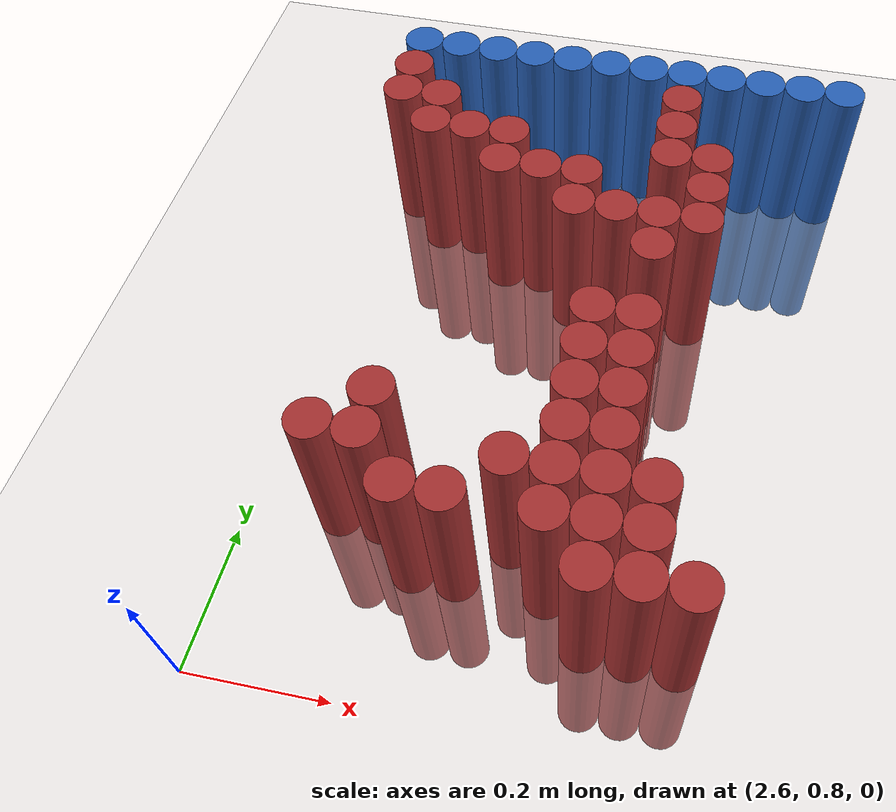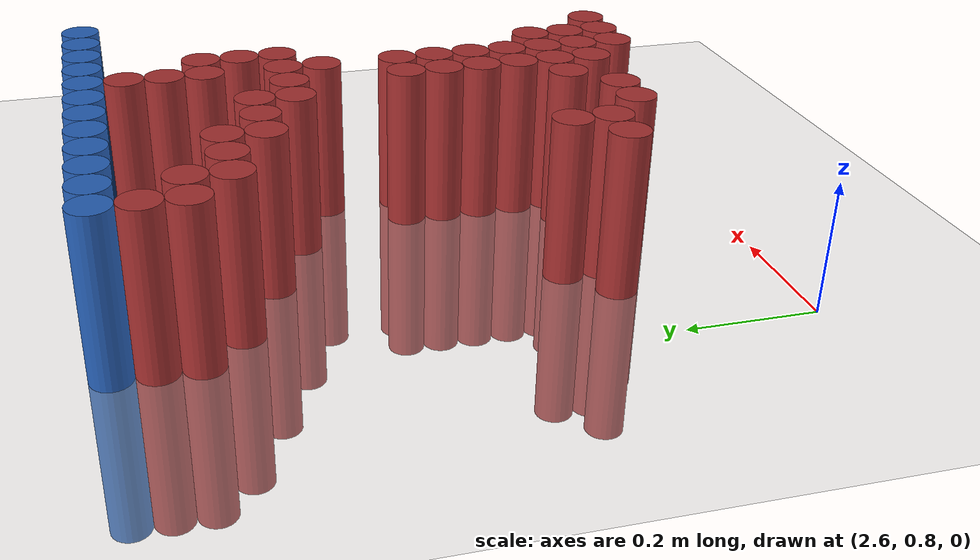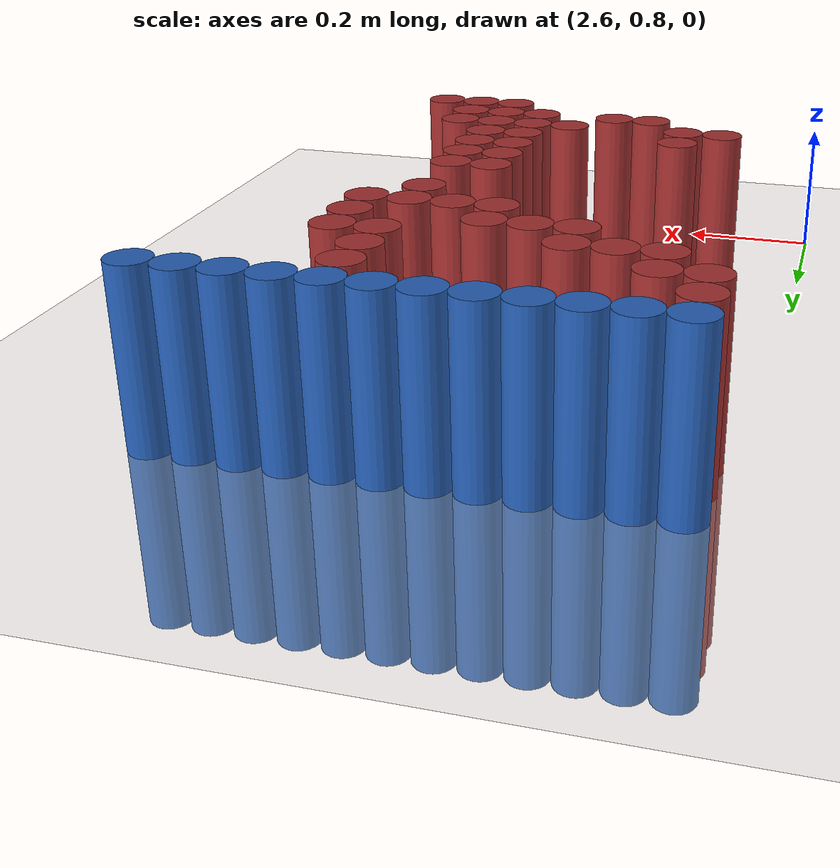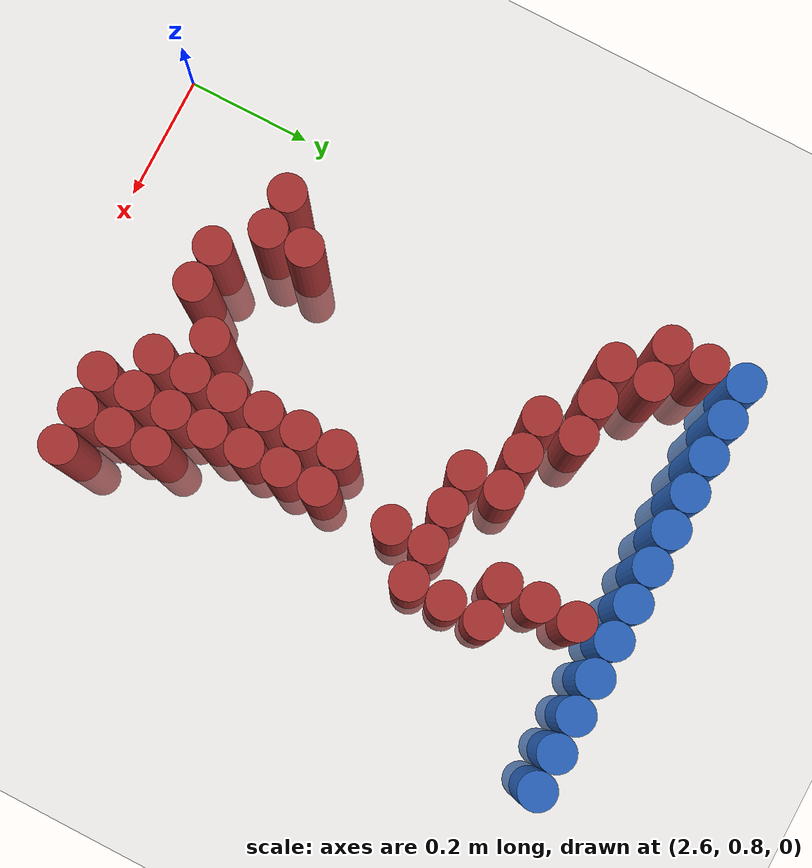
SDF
<sdf version="1.6">
 <world name="default">
  <model name="ground_plane">
   <static>1</static>
   <link name="link">
    <collision name="collision">
     <geometry><plane><normal>0 0 1</normal><size>100 100</size></plane></geometry>
     <surface><friction><ode><mu>100</mu><mu2>50</mu2></ode></friction></surface>
    </collision>
    <visual name="visual">
     <cast_shadows>0</cast_shadows>
     <geometry><plane><normal>0 0 1</normal><size>100 100</size></plane></geometry>
     <material>
      <script><uri>file://media/materials/scripts/gazebo.material</uri><name>Gazebo/Grey</name></script>
     </material>
    </visual>
   </link>
  </model>
  <model name="unit_cylinder_105">
   <static>1</static>
   <pose>2.670000 1.770000 0.000000 0.000000 0.000000 0.000000</pose>
   <link name="link">
    <inertial>
     <mass>1</mass>
     <inertia><ixx>0.145833</ixx><ixy>0</ixy><ixz>0</ixz><iyy>0.145833</iyy><iyz>0</iyz><izz>0.125</izz></inertia>
    </inertial>
    <collision name="collision">
     <geometry><cylinder><radius>0.030000</radius><length>0.5</length></cylinder></geometry>
    </collision>
    <visual name="visual">
     <geometry><cylinder><radius>0.030000</radius><length>0.5</length></cylinder></geometry>
     <material>
      <ambient>0.152000 0.379000 0.720000 1</ambient>
      <diffuse>0.152000 0.379000 0.720000 1</diffuse>
     </material>
     <material>
      <script><name>Gazebo/Grey</name><uri>file://media/materials/scripts/gazebo.material</uri></script>
     </material>
    </visual>
   </link>
  </model>
  <model name="unit_cylinder_106">
   <static>1</static>
   <pose>2.730000 1.770000 0.000000 0.000000 0.000000 0.000000</pose>
   <link name="link">
    <inertial>
     <mass>1</mass>
     <inertia><ixx>0.145833</ixx><ixy>0</ixy><ixz>0</ixz><iyy>0.145833</iyy><iyz>0</iyz><izz>0.125</izz></inertia>
    </inertial>
    <collision name="collision">
     <geometry><cylinder><radius>0.030000</radius><length>0.5</length></cylinder></geometry>
    </collision>
    <visual name="visual">
     <geometry><cylinder><radius>0.030000</radius><length>0.5</length></cylinder></geometry>
     <material>
      <ambient>0.152000 0.379000 0.720000 1</ambient>
      <diffuse>0.152000 0.379000 0.720000 1</diffuse>
     </material>
     <material>
      <script><name>Gazebo/Grey</name><uri>file://media/materials/scripts/gazebo.material</uri></script>
     </material>
    </visual>
   </link>
  </model>
  <model name="unit_cylinder_107">
   <static>1</static>
   <pose>2.790000 1.770000 0.000000 0.000000 0.000000 0.000000</pose>
   <link name="link">
    <inertial>
     <mass>1</mass>
     <inertia><ixx>0.145833</ixx><ixy>0</ixy><ixz>0</ixz><iyy>0.145833</iyy><iyz>0</iyz><izz>0.125</izz></inertia>
    </inertial>
    <collision name="collision">
     <geometry><cylinder><radius>0.030000</radius><length>0.5</length></cylinder></geometry>
    </collision>
    <visual name="visual">
     <geometry><cylinder><radius>0.030000</radius><length>0.5</length></cylinder></geometry>
     <material>
      <ambient>0.152000 0.379000 0.720000 1</ambient>
      <diffuse>0.152000 0.379000 0.720000 1</diffuse>
     </material>
     <material>
      <script><name>Gazebo/Grey</name><uri>file://media/materials/scripts/gazebo.material</uri></script>
     </material>
    </visual>
   </link>
  </model>
  <model name="unit_cylinder_108">
   <static>1</static>
   <pose>2.850000 1.770000 0.000000 0.000000 0.000000 0.000000</pose>
   <link name="link">
    <inertial>
     <mass>1</mass>
     <inertia><ixx>0.145833</ixx><ixy>0</ixy><ixz>0</ixz><iyy>0.145833</iyy><iyz>0</iyz><izz>0.125</izz></inertia>
    </inertial>
    <collision name="collision">
     <geometry><cylinder><radius>0.030000</radius><length>0.5</length></cylinder></geometry>
    </collision>
    <visual name="visual">
     <geometry><cylinder><radius>0.030000</radius><length>0.5</length></cylinder></geometry>
     <material>
      <ambient>0.152000 0.379000 0.720000 1</ambient>
      <diffuse>0.152000 0.379000 0.720000 1</diffuse>
     </material>
     <material>
      <script><name>Gazebo/Grey</name><uri>file://media/materials/scripts/gazebo.material</uri></script>
     </material>
    </visual>
   </link>
  </model>
  <model name="unit_cylinder_109">
   <static>1</static>
   <pose>2.910000 1.770000 0.000000 0.000000 0.000000 0.000000</pose>
   <link name="link">
    <inertial>
     <mass>1</mass>
     <inertia><ixx>0.145833</ixx><ixy>0</ixy><ixz>0</ixz><iyy>0.145833</iyy><iyz>0</iyz><izz>0.125</izz></inertia>
    </inertial>
    <collision name="collision">
     <geometry><cylinder><radius>0.030000</radius><length>0.5</length></cylinder></geometry>
    </collision>
    <visual name="visual">
     <geometry><cylinder><radius>0.030000</radius><length>0.5</length></cylinder></geometry>
     <material>
      <ambient>0.152000 0.379000 0.720000 1</ambient>
      <diffuse>0.152000 0.379000 0.720000 1</diffuse>
     </material>
     <material>
      <script><name>Gazebo/Grey</name><uri>file://media/materials/scripts/gazebo.material</uri></script>
     </material>
    </visual>
   </link>
  </model>
  <model name="unit_cylinder_110">
   <static>1</static>
   <pose>2.970000 1.770000 0.000000 0.000000 0.000000 0.000000</pose>
   <link name="link">
    <inertial>
     <mass>1</mass>
     <inertia><ixx>0.145833</ixx><ixy>0</ixy><ixz>0</ixz><iyy>0.145833</iyy><iyz>0</iyz><izz>0.125</izz></inertia>
    </inertial>
    <collision name="collision">
     <geometry><cylinder><radius>0.030000</radius><length>0.5</length></cylinder></geometry>
    </collision>
    <visual name="visual">
     <geometry><cylinder><radius>0.030000</radius><length>0.5</length></cylinder></geometry>
     <material>
      <ambient>0.152000 0.379000 0.720000 1</ambient>
      <diffuse>0.152000 0.379000 0.720000 1</diffuse>
     </material>
     <material>
      <script><name>Gazebo/Grey</name><uri>file://media/materials/scripts/gazebo.material</uri></script>
     </material>
    </visual>
   </link>
  </model>
  <model name="unit_cylinder_111">
   <static>1</static>
   <pose>3.030000 1.770000 0.000000 0.000000 0.000000 0.000000</pose>
   <link name="link">
    <inertial>
     <mass>1</mass>
     <inertia><ixx>0.145833</ixx><ixy>0</ixy><ixz>0</ixz><iyy>0.145833</iyy><iyz>0</iyz><izz>0.125</izz></inertia>
    </inertial>
    <collision name="collision">
     <geometry><cylinder><radius>0.030000</radius><length>0.5</length></cylinder></geometry>
    </collision>
    <visual name="visual">
     <geometry><cylinder><radius>0.030000</radius><length>0.5</length></cylinder></geometry>
     <material>
      <ambient>0.152000 0.379000 0.720000 1</ambient>
      <diffuse>0.152000 0.379000 0.720000 1</diffuse>
     </material>
     <material>
      <script><name>Gazebo/Grey</name><uri>file://media/materials/scripts/gazebo.material</uri></script>
     </material>
    </visual>
   </link>
  </model>
  <model name="unit_cylinder_112">
   <static>1</static>
   <pose>3.090000 1.770000 0.000000 0.000000 0.000000 0.000000</pose>
   <link name="link">
    <inertial>
     <mass>1</mass>
     <inertia><ixx>0.145833</ixx><ixy>0</ixy><ixz>0</ixz><iyy>0.145833</iyy><iyz>0</iyz><izz>0.125</izz></inertia>
    </inertial>
    <collision name="collision">
     <geometry><cylinder><radius>0.030000</radius><length>0.5</length></cylinder></geometry>
    </collision>
    <visual name="visual">
     <geometry><cylinder><radius>0.030000</radius><length>0.5</length></cylinder></geometry>
     <material>
      <ambient>0.152000 0.379000 0.720000 1</ambient>
      <diffuse>0.152000 0.379000 0.720000 1</diffuse>
     </material>
     <material>
      <script><name>Gazebo/Grey</name><uri>file://media/materials/scripts/gazebo.material</uri></script>
     </material>
    </visual>
   </link>
  </model>
  <model name="unit_cylinder_113">
   <static>1</static>
   <pose>3.150000 1.770000 0.000000 0.000000 0.000000 0.000000</pose>
   <link name="link">
    <inertial>
     <mass>1</mass>
     <inertia><ixx>0.145833</ixx><ixy>0</ixy><ixz>0</ixz><iyy>0.145833</iyy><iyz>0</iyz><izz>0.125</izz></inertia>
    </inertial>
    <collision name="collision">
     <geometry><cylinder><radius>0.030000</radius><length>0.5</length></cylinder></geometry>
    </collision>
    <visual name="visual">
     <geometry><cylinder><radius>0.030000</radius><length>0.5</length></cylinder></geometry>
     <material>
      <ambient>0.152000 0.379000 0.720000 1</ambient>
      <diffuse>0.152000 0.379000 0.720000 1</diffuse>
     </material>
     <material>
      <script><name>Gazebo/Grey</name><uri>file://media/materials/scripts/gazebo.material</uri></script>
     </material>
    </visual>
   </link>
  </model>
  <model name="unit_cylinder_114">
   <static>1</static>
   <pose>3.210000 1.770000 0.000000 0.000000 0.000000 0.000000</pose>
   <link name="link">
    <inertial>
     <mass>1</mass>
     <inertia><ixx>0.145833</ixx><ixy>0</ixy><ixz>0</ixz><iyy>0.145833</iyy><iyz>0</iyz><izz>0.125</izz></inertia>
    </inertial>
    <collision name="collision">
     <geometry><cylinder><radius>0.030000</radius><length>0.5</length></cylinder></geometry>
    </collision>
    <visual name="visual">
     <geometry><cylinder><radius>0.030000</radius><length>0.5</length></cylinder></geometry>
     <material>
      <ambient>0.152000 0.379000 0.720000 1</ambient>
      <diffuse>0.152000 0.379000 0.720000 1</diffuse>
     </material>
     <material>
      <script><name>Gazebo/Grey</name><uri>file://media/materials/scripts/gazebo.material</uri></script>
     </material>
    </visual>
   </link>
  </model>
  <model name="unit_cylinder_115">
   <static>1</static>
   <pose>3.270000 1.770000 0.000000 0.000000 0.000000 0.000000</pose>
   <link name="link">
    <inertial>
     <mass>1</mass>
     <inertia><ixx>0.145833</ixx><ixy>0</ixy><ixz>0</ixz><iyy>0.145833</iyy><iyz>0</iyz><izz>0.125</izz></inertia>
    </inertial>
    <collision name="collision">
     <geometry><cylinder><radius>0.030000</radius><length>0.5</length></cylinder></geometry>
    </collision>
    <visual name="visual">
     <geometry><cylinder><radius>0.030000</radius><length>0.5</length></cylinder></geometry>
     <material>
      <ambient>0.152000 0.379000 0.720000 1</ambient>
      <diffuse>0.152000 0.379000 0.720000 1</diffuse>
     </material>
     <material>
      <script><name>Gazebo/Grey</name><uri>file://media/materials/scripts/gazebo.material</uri></script>
     </material>
    </visual>
   </link>
  </model>
  <model name="unit_cylinder_116">
   <static>1</static>
   <pose>3.330000 1.770000 0.000000 0.000000 0.000000 0.000000</pose>
   <link name="link">
    <inertial>
     <mass>1</mass>
     <inertia><ixx>0.145833</ixx><ixy>0</ixy><ixz>0</ixz><iyy>0.145833</iyy><iyz>0</iyz><izz>0.125</izz></inertia>
    </inertial>
    <collision name="collision">
     <geometry><cylinder><radius>0.030000</radius><length>0.5</length></cylinder></geometry>
    </collision>
    <visual name="visual">
     <geometry><cylinder><radius>0.030000</radius><length>0.5</length></cylinder></geometry>
     <material>
      <ambient>0.152000 0.379000 0.720000 1</ambient>
      <diffuse>0.152000 0.379000 0.720000 1</diffuse>
     </material>
     <material>
      <script><name>Gazebo/Grey</name><uri>file://media/materials/scripts/gazebo.material</uri></script>
     </material>
    </visual>
   </link>
  </model>
  <model name="unit_cylinder_129">
   <static>1</static>
   <pose>2.670000 1.710000 0.000000 0.000000 0.000000 0.000000</pose>
   <link name="link">
    <inertial>
     <mass>1</mass>
     <inertia><ixx>0.145833</ixx><ixy>0</ixy><ixz>0</ixz><iyy>0.145833</iyy><iyz>0</iyz><izz>0.125</izz></inertia>
    </inertial>
    <collision name="collision">
     <geometry><cylinder><radius>0.030000</radius><length>0.5</length></cylinder></geometry>
    </collision>
    <visual name="visual">
     <geometry><cylinder><radius>0.030000</radius><length>0.5</length></cylinder></geometry>
     <material>
      <ambient>0.648000 0.192000 0.192000 1</ambient>
      <diffuse>0.648000 0.192000 0.192000 1</diffuse>
     </material>
     <material>
      <script><name>Gazebo/Grey</name><uri>file://media/materials/scripts/gazebo.material</uri></script>
     </material>
    </visual>
   </link>
  </model>
  <model name="unit_cylinder_130">
   <static>1</static>
   <pose>3.090000 1.710000 0.000000 0.000000 0.000000 0.000000</pose>
   <link name="link">
    <inertial>
     <mass>1</mass>
     <inertia><ixx>0.145833</ixx><ixy>0</ixy><ixz>0</ixz><iyy>0.145833</iyy><iyz>0</iyz><izz>0.125</izz></inertia>
    </inertial>
    <collision name="collision">
     <geometry><cylinder><radius>0.030000</radius><length>0.5</length></cylinder></geometry>
    </collision>
    <visual name="visual">
     <geometry><cylinder><radius>0.030000</radius><length>0.5</length></cylinder></geometry>
     <material>
      <ambient>0.648000 0.192000 0.192000 1</ambient>
      <diffuse>0.648000 0.192000 0.192000 1</diffuse>
     </material>
     <material>
      <script><name>Gazebo/Grey</name><uri>file://media/materials/scripts/gazebo.material</uri></script>
     </material>
    </visual>
   </link>
  </model>
  <model name="unit_cylinder_136">
   <static>1</static>
   <pose>2.670000 1.650000 0.000000 0.000000 0.000000 0.000000</pose>
   <link name="link">
    <inertial>
     <mass>1</mass>
     <inertia><ixx>0.145833</ixx><ixy>0</ixy><ixz>0</ixz><iyy>0.145833</iyy><iyz>0</iyz><izz>0.125</izz></inertia>
    </inertial>
    <collision name="collision">
     <geometry><cylinder><radius>0.030000</radius><length>0.5</length></cylinder></geometry>
    </collision>
    <visual name="visual">
     <geometry><cylinder><radius>0.030000</radius><length>0.5</length></cylinder></geometry>
     <material>
      <ambient>0.648000 0.192000 0.192000 1</ambient>
      <diffuse>0.648000 0.192000 0.192000 1</diffuse>
     </material>
     <material>
      <script><name>Gazebo/Grey</name><uri>file://media/materials/scripts/gazebo.material</uri></script>
     </material>
    </visual>
   </link>
  </model>
  <model name="unit_cylinder_137">
   <static>1</static>
   <pose>2.730000 1.650000 0.000000 0.000000 0.000000 0.000000</pose>
   <link name="link">
    <inertial>
     <mass>1</mass>
     <inertia><ixx>0.145833</ixx><ixy>0</ixy><ixz>0</ixz><iyy>0.145833</iyy><iyz>0</iyz><izz>0.125</izz></inertia>
    </inertial>
    <collision name="collision">
     <geometry><cylinder><radius>0.030000</radius><length>0.5</length></cylinder></geometry>
    </collision>
    <visual name="visual">
     <geometry><cylinder><radius>0.030000</radius><length>0.5</length></cylinder></geometry>
     <material>
      <ambient>0.648000 0.192000 0.192000 1</ambient>
      <diffuse>0.648000 0.192000 0.192000 1</diffuse>
     </material>
     <material>
      <script><name>Gazebo/Grey</name><uri>file://media/materials/scripts/gazebo.material</uri></script>
     </material>
    </visual>
   </link>
  </model>
  <model name="unit_cylinder_138">
   <static>1</static>
   <pose>3.090000 1.650000 0.000000 0.000000 0.000000 0.000000</pose>
   <link name="link">
    <inertial>
     <mass>1</mass>
     <inertia><ixx>0.145833</ixx><ixy>0</ixy><ixz>0</ixz><iyy>0.145833</iyy><iyz>0</iyz><izz>0.125</izz></inertia>
    </inertial>
    <collision name="collision">
     <geometry><cylinder><radius>0.030000</radius><length>0.5</length></cylinder></geometry>
    </collision>
    <visual name="visual">
     <geometry><cylinder><radius>0.030000</radius><length>0.5</length></cylinder></geometry>
     <material>
      <ambient>0.648000 0.192000 0.192000 1</ambient>
      <diffuse>0.648000 0.192000 0.192000 1</diffuse>
     </material>
     <material>
      <script><name>Gazebo/Grey</name><uri>file://media/materials/scripts/gazebo.material</uri></script>
     </material>
    </visual>
   </link>
  </model>
  <model name="unit_cylinder_146">
   <static>1</static>
   <pose>2.730000 1.590000 0.000000 0.000000 0.000000 0.000000</pose>
   <link name="link">
    <inertial>
     <mass>1</mass>
     <inertia><ixx>0.145833</ixx><ixy>0</ixy><ixz>0</ixz><iyy>0.145833</iyy><iyz>0</iyz><izz>0.125</izz></inertia>
    </inertial>
    <collision name="collision">
     <geometry><cylinder><radius>0.030000</radius><length>0.5</length></cylinder></geometry>
    </collision>
    <visual name="visual">
     <geometry><cylinder><radius>0.030000</radius><length>0.5</length></cylinder></geometry>
     <material>
      <ambient>0.648000 0.192000 0.192000 1</ambient>
      <diffuse>0.648000 0.192000 0.192000 1</diffuse>
     </material>
     <material>
      <script><name>Gazebo/Grey</name><uri>file://media/materials/scripts/gazebo.material</uri></script>
     </material>
    </visual>
   </link>
  </model>
  <model name="unit_cylinder_147">
   <static>1</static>
   <pose>2.790000 1.590000 0.000000 0.000000 0.000000 0.000000</pose>
   <link name="link">
    <inertial>
     <mass>1</mass>
     <inertia><ixx>0.145833</ixx><ixy>0</ixy><ixz>0</ixz><iyy>0.145833</iyy><iyz>0</iyz><izz>0.125</izz></inertia>
    </inertial>
    <collision name="collision">
     <geometry><cylinder><radius>0.030000</radius><length>0.5</length></cylinder></geometry>
    </collision>
    <visual name="visual">
     <geometry><cylinder><radius>0.030000</radius><length>0.5</length></cylinder></geometry>
     <material>
      <ambient>0.648000 0.192000 0.192000 1</ambient>
      <diffuse>0.648000 0.192000 0.192000 1</diffuse>
     </material>
     <material>
      <script><name>Gazebo/Grey</name><uri>file://media/materials/scripts/gazebo.material</uri></script>
     </material>
    </visual>
   </link>
  </model>
  <model name="unit_cylinder_148">
   <static>1</static>
   <pose>2.850000 1.590000 0.000000 0.000000 0.000000 0.000000</pose>
   <link name="link">
    <inertial>
     <mass>1</mass>
     <inertia><ixx>0.145833</ixx><ixy>0</ixy><ixz>0</ixz><iyy>0.145833</iyy><iyz>0</iyz><izz>0.125</izz></inertia>
    </inertial>
    <collision name="collision">
     <geometry><cylinder><radius>0.030000</radius><length>0.5</length></cylinder></geometry>
    </collision>
    <visual name="visual">
     <geometry><cylinder><radius>0.030000</radius><length>0.5</length></cylinder></geometry>
     <material>
      <ambient>0.648000 0.192000 0.192000 1</ambient>
      <diffuse>0.648000 0.192000 0.192000 1</diffuse>
     </material>
     <material>
      <script><name>Gazebo/Grey</name><uri>file://media/materials/scripts/gazebo.material</uri></script>
     </material>
    </visual>
   </link>
  </model>
  <model name="unit_cylinder_149">
   <static>1</static>
   <pose>3.090000 1.590000 0.000000 0.000000 0.000000 0.000000</pose>
   <link name="link">
    <inertial>
     <mass>1</mass>
     <inertia><ixx>0.145833</ixx><ixy>0</ixy><ixz>0</ixz><iyy>0.145833</iyy><iyz>0</iyz><izz>0.125</izz></inertia>
    </inertial>
    <collision name="collision">
     <geometry><cylinder><radius>0.030000</radius><length>0.5</length></cylinder></geometry>
    </collision>
    <visual name="visual">
     <geometry><cylinder><radius>0.030000</radius><length>0.5</length></cylinder></geometry>
     <material>
      <ambient>0.648000 0.192000 0.192000 1</ambient>
      <diffuse>0.648000 0.192000 0.192000 1</diffuse>
     </material>
     <material>
      <script><name>Gazebo/Grey</name><uri>file://media/materials/scripts/gazebo.material</uri></script>
     </material>
    </visual>
   </link>
  </model>
  <model name="unit_cylinder_150">
   <static>1</static>
   <pose>3.150000 1.590000 0.000000 0.000000 0.000000 0.000000</pose>
   <link name="link">
    <inertial>
     <mass>1</mass>
     <inertia><ixx>0.145833</ixx><ixy>0</ixy><ixz>0</ixz><iyy>0.145833</iyy><iyz>0</iyz><izz>0.125</izz></inertia>
    </inertial>
    <collision name="collision">
     <geometry><cylinder><radius>0.030000</radius><length>0.5</length></cylinder></geometry>
    </collision>
    <visual name="visual">
     <geometry><cylinder><radius>0.030000</radius><length>0.5</length></cylinder></geometry>
     <material>
      <ambient>0.648000 0.192000 0.192000 1</ambient>
      <diffuse>0.648000 0.192000 0.192000 1</diffuse>
     </material>
     <material>
      <script><name>Gazebo/Grey</name><uri>file://media/materials/scripts/gazebo.material</uri></script>
     </material>
    </visual>
   </link>
  </model>
  <model name="unit_cylinder_160">
   <static>1</static>
   <pose>2.850000 1.530000 0.000000 0.000000 0.000000 0.000000</pose>
   <link name="link">
    <inertial>
     <mass>1</mass>
     <inertia><ixx>0.145833</ixx><ixy>0</ixy><ixz>0</ixz><iyy>0.145833</iyy><iyz>0</iyz><izz>0.125</izz></inertia>
    </inertial>
    <collision name="collision">
     <geometry><cylinder><radius>0.030000</radius><length>0.5</length></cylinder></geometry>
    </collision>
    <visual name="visual">
     <geometry><cylinder><radius>0.030000</radius><length>0.5</length></cylinder></geometry>
     <material>
      <ambient>0.648000 0.192000 0.192000 1</ambient>
      <diffuse>0.648000 0.192000 0.192000 1</diffuse>
     </material>
     <material>
      <script><name>Gazebo/Grey</name><uri>file://media/materials/scripts/gazebo.material</uri></script>
     </material>
    </visual>
   </link>
  </model>
  <model name="unit_cylinder_161">
   <static>1</static>
   <pose>2.910000 1.530000 0.000000 0.000000 0.000000 0.000000</pose>
   <link name="link">
    <inertial>
     <mass>1</mass>
     <inertia><ixx>0.145833</ixx><ixy>0</ixy><ixz>0</ixz><iyy>0.145833</iyy><iyz>0</iyz><izz>0.125</izz></inertia>
    </inertial>
    <collision name="collision">
     <geometry><cylinder><radius>0.030000</radius><length>0.5</length></cylinder></geometry>
    </collision>
    <visual name="visual">
     <geometry><cylinder><radius>0.030000</radius><length>0.5</length></cylinder></geometry>
     <material>
      <ambient>0.648000 0.192000 0.192000 1</ambient>
      <diffuse>0.648000 0.192000 0.192000 1</diffuse>
     </material>
     <material>
      <script><name>Gazebo/Grey</name><uri>file://media/materials/scripts/gazebo.material</uri></script>
     </material>
    </visual>
   </link>
  </model>
  <model name="unit_cylinder_162">
   <static>1</static>
   <pose>2.970000 1.530000 0.000000 0.000000 0.000000 0.000000</pose>
   <link name="link">
    <inertial>
     <mass>1</mass>
     <inertia><ixx>0.145833</ixx><ixy>0</ixy><ixz>0</ixz><iyy>0.145833</iyy><iyz>0</iyz><izz>0.125</izz></inertia>
    </inertial>
    <collision name="collision">
     <geometry><cylinder><radius>0.030000</radius><length>0.5</length></cylinder></geometry>
    </collision>
    <visual name="visual">
     <geometry><cylinder><radius>0.030000</radius><length>0.5</length></cylinder></geometry>
     <material>
      <ambient>0.648000 0.192000 0.192000 1</ambient>
      <diffuse>0.648000 0.192000 0.192000 1</diffuse>
     </material>
     <material>
      <script><name>Gazebo/Grey</name><uri>file://media/materials/scripts/gazebo.material</uri></script>
     </material>
    </visual>
   </link>
  </model>
  <model name="unit_cylinder_163">
   <static>1</static>
   <pose>3.150000 1.530000 0.000000 0.000000 0.000000 0.000000</pose>
   <link name="link">
    <inertial>
     <mass>1</mass>
     <inertia><ixx>0.145833</ixx><ixy>0</ixy><ixz>0</ixz><iyy>0.145833</iyy><iyz>0</iyz><izz>0.125</izz></inertia>
    </inertial>
    <collision name="collision">
     <geometry><cylinder><radius>0.030000</radius><length>0.5</length></cylinder></geometry>
    </collision>
    <visual name="visual">
     <geometry><cylinder><radius>0.030000</radius><length>0.5</length></cylinder></geometry>
     <material>
      <ambient>0.648000 0.192000 0.192000 1</ambient>
      <diffuse>0.648000 0.192000 0.192000 1</diffuse>
     </material>
     <material>
      <script><name>Gazebo/Grey</name><uri>file://media/materials/scripts/gazebo.material</uri></script>
     </material>
    </visual>
   </link>
  </model>
  <model name="unit_cylinder_170">
   <static>1</static>
   <pose>2.970000 1.470000 0.000000 0.000000 0.000000 0.000000</pose>
   <link name="link">
    <inertial>
     <mass>1</mass>
     <inertia><ixx>0.145833</ixx><ixy>0</ixy><ixz>0</ixz><iyy>0.145833</iyy><iyz>0</iyz><izz>0.125</izz></inertia>
    </inertial>
    <collision name="collision">
     <geometry><cylinder><radius>0.030000</radius><length>0.5</length></cylinder></geometry>
    </collision>
    <visual name="visual">
     <geometry><cylinder><radius>0.030000</radius><length>0.5</length></cylinder></geometry>
     <material>
      <ambient>0.648000 0.192000 0.192000 1</ambient>
      <diffuse>0.648000 0.192000 0.192000 1</diffuse>
     </material>
     <material>
      <script><name>Gazebo/Grey</name><uri>file://media/materials/scripts/gazebo.material</uri></script>
     </material>
    </visual>
   </link>
  </model>
  <model name="unit_cylinder_171">
   <static>1</static>
   <pose>3.030000 1.470000 0.000000 0.000000 0.000000 0.000000</pose>
   <link name="link">
    <inertial>
     <mass>1</mass>
     <inertia><ixx>0.145833</ixx><ixy>0</ixy><ixz>0</ixz><iyy>0.145833</iyy><iyz>0</iyz><izz>0.125</izz></inertia>
    </inertial>
    <collision name="collision">
     <geometry><cylinder><radius>0.030000</radius><length>0.5</length></cylinder></geometry>
    </collision>
    <visual name="visual">
     <geometry><cylinder><radius>0.030000</radius><length>0.5</length></cylinder></geometry>
     <material>
      <ambient>0.648000 0.192000 0.192000 1</ambient>
      <diffuse>0.648000 0.192000 0.192000 1</diffuse>
     </material>
     <material>
      <script><name>Gazebo/Grey</name><uri>file://media/materials/scripts/gazebo.material</uri></script>
     </material>
    </visual>
   </link>
  </model>
  <model name="unit_cylinder_172">
   <static>1</static>
   <pose>3.090000 1.470000 0.000000 0.000000 0.000000 0.000000</pose>
   <link name="link">
    <inertial>
     <mass>1</mass>
     <inertia><ixx>0.145833</ixx><ixy>0</ixy><ixz>0</ixz><iyy>0.145833</iyy><iyz>0</iyz><izz>0.125</izz></inertia>
    </inertial>
    <collision name="collision">
     <geometry><cylinder><radius>0.030000</radius><length>0.5</length></cylinder></geometry>
    </collision>
    <visual name="visual">
     <geometry><cylinder><radius>0.030000</radius><length>0.5</length></cylinder></geometry>
     <material>
      <ambient>0.648000 0.192000 0.192000 1</ambient>
      <diffuse>0.648000 0.192000 0.192000 1</diffuse>
     </material>
     <material>
      <script><name>Gazebo/Grey</name><uri>file://media/materials/scripts/gazebo.material</uri></script>
     </material>
    </visual>
   </link>
  </model>
  <model name="unit_cylinder_173">
   <static>1</static>
   <pose>3.150000 1.470000 0.000000 0.000000 0.000000 0.000000</pose>
   <link name="link">
    <inertial>
     <mass>1</mass>
     <inertia><ixx>0.145833</ixx><ixy>0</ixy><ixz>0</ixz><iyy>0.145833</iyy><iyz>0</iyz><izz>0.125</izz></inertia>
    </inertial>
    <collision name="collision">
     <geometry><cylinder><radius>0.030000</radius><length>0.5</length></cylinder></geometry>
    </collision>
    <visual name="visual">
     <geometry><cylinder><radius>0.030000</radius><length>0.5</length></cylinder></geometry>
     <material>
      <ambient>0.648000 0.192000 0.192000 1</ambient>
      <diffuse>0.648000 0.192000 0.192000 1</diffuse>
     </material>
     <material>
      <script><name>Gazebo/Grey</name><uri>file://media/materials/scripts/gazebo.material</uri></script>
     </material>
    </visual>
   </link>
  </model>
  <model name="unit_cylinder_179">
   <static>1</static>
   <pose>3.090000 1.410000 0.000000 0.000000 0.000000 0.000000</pose>
   <link name="link">
    <inertial>
     <mass>1</mass>
     <inertia><ixx>0.145833</ixx><ixy>0</ixy><ixz>0</ixz><iyy>0.145833</iyy><iyz>0</iyz><izz>0.125</izz></inertia>
    </inertial>
    <collision name="collision">
     <geometry><cylinder><radius>0.030000</radius><length>0.5</length></cylinder></geometry>
    </collision>
    <visual name="visual">
     <geometry><cylinder><radius>0.030000</radius><length>0.5</length></cylinder></geometry>
     <material>
      <ambient>0.648000 0.192000 0.192000 1</ambient>
      <diffuse>0.648000 0.192000 0.192000 1</diffuse>
     </material>
     <material>
      <script><name>Gazebo/Grey</name><uri>file://media/materials/scripts/gazebo.material</uri></script>
     </material>
    </visual>
   </link>
  </model>
  <model name="unit_cylinder_188">
   <static>1</static>
   <pose>3.030000 1.290000 0.000000 0.000000 0.000000 0.000000</pose>
   <link name="link">
    <inertial>
     <mass>1</mass>
     <inertia><ixx>0.145833</ixx><ixy>0</ixy><ixz>0</ixz><iyy>0.145833</iyy><iyz>0</iyz><izz>0.125</izz></inertia>
    </inertial>
    <collision name="collision">
     <geometry><cylinder><radius>0.030000</radius><length>0.5</length></cylinder></geometry>
    </collision>
    <visual name="visual">
     <geometry><cylinder><radius>0.030000</radius><length>0.5</length></cylinder></geometry>
     <material>
      <ambient>0.648000 0.192000 0.192000 1</ambient>
      <diffuse>0.648000 0.192000 0.192000 1</diffuse>
     </material>
     <material>
      <script><name>Gazebo/Grey</name><uri>file://media/materials/scripts/gazebo.material</uri></script>
     </material>
    </visual>
   </link>
  </model>
  <model name="unit_cylinder_189">
   <static>1</static>
   <pose>3.090000 1.290000 0.000000 0.000000 0.000000 0.000000</pose>
   <link name="link">
    <inertial>
     <mass>1</mass>
     <inertia><ixx>0.145833</ixx><ixy>0</ixy><ixz>0</ixz><iyy>0.145833</iyy><iyz>0</iyz><izz>0.125</izz></inertia>
    </inertial>
    <collision name="collision">
     <geometry><cylinder><radius>0.030000</radius><length>0.5</length></cylinder></geometry>
    </collision>
    <visual name="visual">
     <geometry><cylinder><radius>0.030000</radius><length>0.5</length></cylinder></geometry>
     <material>
      <ambient>0.648000 0.192000 0.192000 1</ambient>
      <diffuse>0.648000 0.192000 0.192000 1</diffuse>
     </material>
     <material>
      <script><name>Gazebo/Grey</name><uri>file://media/materials/scripts/gazebo.material</uri></script>
     </material>
    </visual>
   </link>
  </model>
  <model name="unit_cylinder_193">
   <static>1</static>
   <pose>3.030000 1.230000 0.000000 0.000000 0.000000 0.000000</pose>
   <link name="link">
    <inertial>
     <mass>1</mass>
     <inertia><ixx>0.145833</ixx><ixy>0</ixy><ixz>0</ixz><iyy>0.145833</iyy><iyz>0</iyz><izz>0.125</izz></inertia>
    </inertial>
    <collision name="collision">
     <geometry><cylinder><radius>0.030000</radius><length>0.5</length></cylinder></geometry>
    </collision>
    <visual name="visual">
     <geometry><cylinder><radius>0.030000</radius><length>0.5</length></cylinder></geometry>
     <material>
      <ambient>0.648000 0.192000 0.192000 1</ambient>
      <diffuse>0.648000 0.192000 0.192000 1</diffuse>
     </material>
     <material>
      <script><name>Gazebo/Grey</name><uri>file://media/materials/scripts/gazebo.material</uri></script>
     </material>
    </visual>
   </link>
  </model>
  <model name="unit_cylinder_194">
   <static>1</static>
   <pose>3.090000 1.230000 0.000000 0.000000 0.000000 0.000000</pose>
   <link name="link">
    <inertial>
     <mass>1</mass>
     <inertia><ixx>0.145833</ixx><ixy>0</ixy><ixz>0</ixz><iyy>0.145833</iyy><iyz>0</iyz><izz>0.125</izz></inertia>
    </inertial>
    <collision name="collision">
     <geometry><cylinder><radius>0.030000</radius><length>0.5</length></cylinder></geometry>
    </collision>
    <visual name="visual">
     <geometry><cylinder><radius>0.030000</radius><length>0.5</length></cylinder></geometry>
     <material>
      <ambient>0.648000 0.192000 0.192000 1</ambient>
      <diffuse>0.648000 0.192000 0.192000 1</diffuse>
     </material>
     <material>
      <script><name>Gazebo/Grey</name><uri>file://media/materials/scripts/gazebo.material</uri></script>
     </material>
    </visual>
   </link>
  </model>
  <model name="unit_cylinder_198">
   <static>1</static>
   <pose>3.030000 1.170000 0.000000 0.000000 0.000000 0.000000</pose>
   <link name="link">
    <inertial>
     <mass>1</mass>
     <inertia><ixx>0.145833</ixx><ixy>0</ixy><ixz>0</ixz><iyy>0.145833</iyy><iyz>0</iyz><izz>0.125</izz></inertia>
    </inertial>
    <collision name="collision">
     <geometry><cylinder><radius>0.030000</radius><length>0.5</length></cylinder></geometry>
    </collision>
    <visual name="visual">
     <geometry><cylinder><radius>0.030000</radius><length>0.5</length></cylinder></geometry>
     <material>
      <ambient>0.648000 0.192000 0.192000 1</ambient>
      <diffuse>0.648000 0.192000 0.192000 1</diffuse>
     </material>
     <material>
      <script><name>Gazebo/Grey</name><uri>file://media/materials/scripts/gazebo.material</uri></script>
     </material>
    </visual>
   </link>
  </model>
  <model name="unit_cylinder_199">
   <static>1</static>
   <pose>3.090000 1.170000 0.000000 0.000000 0.000000 0.000000</pose>
   <link name="link">
    <inertial>
     <mass>1</mass>
     <inertia><ixx>0.145833</ixx><ixy>0</ixy><ixz>0</ixz><iyy>0.145833</iyy><iyz>0</iyz><izz>0.125</izz></inertia>
    </inertial>
    <collision name="collision">
     <geometry><cylinder><radius>0.030000</radius><length>0.5</length></cylinder></geometry>
    </collision>
    <visual name="visual">
     <geometry><cylinder><radius>0.030000</radius><length>0.5</length></cylinder></geometry>
     <material>
      <ambient>0.648000 0.192000 0.192000 1</ambient>
      <diffuse>0.648000 0.192000 0.192000 1</diffuse>
     </material>
     <material>
      <script><name>Gazebo/Grey</name><uri>file://media/materials/scripts/gazebo.material</uri></script>
     </material>
    </visual>
   </link>
  </model>
  <model name="unit_cylinder_204">
   <static>1</static>
   <pose>2.790000 1.110000 0.000000 0.000000 0.000000 0.000000</pose>
   <link name="link">
    <inertial>
     <mass>1</mass>
     <inertia><ixx>0.145833</ixx><ixy>0</ixy><ixz>0</ixz><iyy>0.145833</iyy><iyz>0</iyz><izz>0.125</izz></inertia>
    </inertial>
    <collision name="collision">
     <geometry><cylinder><radius>0.030000</radius><length>0.5</length></cylinder></geometry>
    </collision>
    <visual name="visual">
     <geometry><cylinder><radius>0.030000</radius><length>0.5</length></cylinder></geometry>
     <material>
      <ambient>0.648000 0.192000 0.192000 1</ambient>
      <diffuse>0.648000 0.192000 0.192000 1</diffuse>
     </material>
     <material>
      <script><name>Gazebo/Grey</name><uri>file://media/materials/scripts/gazebo.material</uri></script>
     </material>
    </visual>
   </link>
  </model>
  <model name="unit_cylinder_205">
   <static>1</static>
   <pose>3.030000 1.110000 0.000000 0.000000 0.000000 0.000000</pose>
   <link name="link">
    <inertial>
     <mass>1</mass>
     <inertia><ixx>0.145833</ixx><ixy>0</ixy><ixz>0</ixz><iyy>0.145833</iyy><iyz>0</iyz><izz>0.125</izz></inertia>
    </inertial>
    <collision name="collision">
     <geometry><cylinder><radius>0.030000</radius><length>0.5</length></cylinder></geometry>
    </collision>
    <visual name="visual">
     <geometry><cylinder><radius>0.030000</radius><length>0.5</length></cylinder></geometry>
     <material>
      <ambient>0.648000 0.192000 0.192000 1</ambient>
      <diffuse>0.648000 0.192000 0.192000 1</diffuse>
     </material>
     <material>
      <script><name>Gazebo/Grey</name><uri>file://media/materials/scripts/gazebo.material</uri></script>
     </material>
    </visual>
   </link>
  </model>
  <model name="unit_cylinder_206">
   <static>1</static>
   <pose>3.090000 1.110000 0.000000 0.000000 0.000000 0.000000</pose>
   <link name="link">
    <inertial>
     <mass>1</mass>
     <inertia><ixx>0.145833</ixx><ixy>0</ixy><ixz>0</ixz><iyy>0.145833</iyy><iyz>0</iyz><izz>0.125</izz></inertia>
    </inertial>
    <collision name="collision">
     <geometry><cylinder><radius>0.030000</radius><length>0.5</length></cylinder></geometry>
    </collision>
    <visual name="visual">
     <geometry><cylinder><radius>0.030000</radius><length>0.5</length></cylinder></geometry>
     <material>
      <ambient>0.648000 0.192000 0.192000 1</ambient>
      <diffuse>0.648000 0.192000 0.192000 1</diffuse>
     </material>
     <material>
      <script><name>Gazebo/Grey</name><uri>file://media/materials/scripts/gazebo.material</uri></script>
     </material>
    </visual>
   </link>
  </model>
  <model name="unit_cylinder_213">
   <static>1</static>
   <pose>2.730000 1.050000 0.000000 0.000000 0.000000 0.000000</pose>
   <link name="link">
    <inertial>
     <mass>1</mass>
     <inertia><ixx>0.145833</ixx><ixy>0</ixy><ixz>0</ixz><iyy>0.145833</iyy><iyz>0</iyz><izz>0.125</izz></inertia>
    </inertial>
    <collision name="collision">
     <geometry><cylinder><radius>0.030000</radius><length>0.5</length></cylinder></geometry>
    </collision>
    <visual name="visual">
     <geometry><cylinder><radius>0.030000</radius><length>0.5</length></cylinder></geometry>
     <material>
      <ambient>0.648000 0.192000 0.192000 1</ambient>
      <diffuse>0.648000 0.192000 0.192000 1</diffuse>
     </material>
     <material>
      <script><name>Gazebo/Grey</name><uri>file://media/materials/scripts/gazebo.material</uri></script>
     </material>
    </visual>
   </link>
  </model>
  <model name="unit_cylinder_214">
   <static>1</static>
   <pose>2.790000 1.050000 0.000000 0.000000 0.000000 0.000000</pose>
   <link name="link">
    <inertial>
     <mass>1</mass>
     <inertia><ixx>0.145833</ixx><ixy>0</ixy><ixz>0</ixz><iyy>0.145833</iyy><iyz>0</iyz><izz>0.125</izz></inertia>
    </inertial>
    <collision name="collision">
     <geometry><cylinder><radius>0.030000</radius><length>0.5</length></cylinder></geometry>
    </collision>
    <visual name="visual">
     <geometry><cylinder><radius>0.030000</radius><length>0.5</length></cylinder></geometry>
     <material>
      <ambient>0.648000 0.192000 0.192000 1</ambient>
      <diffuse>0.648000 0.192000 0.192000 1</diffuse>
     </material>
     <material>
      <script><name>Gazebo/Grey</name><uri>file://media/materials/scripts/gazebo.material</uri></script>
     </material>
    </visual>
   </link>
  </model>
  <model name="unit_cylinder_215">
   <static>1</static>
   <pose>2.970000 1.050000 0.000000 0.000000 0.000000 0.000000</pose>
   <link name="link">
    <inertial>
     <mass>1</mass>
     <inertia><ixx>0.145833</ixx><ixy>0</ixy><ixz>0</ixz><iyy>0.145833</iyy><iyz>0</iyz><izz>0.125</izz></inertia>
    </inertial>
    <collision name="collision">
     <geometry><cylinder><radius>0.030000</radius><length>0.5</length></cylinder></geometry>
    </collision>
    <visual name="visual">
     <geometry><cylinder><radius>0.030000</radius><length>0.5</length></cylinder></geometry>
     <material>
      <ambient>0.648000 0.192000 0.192000 1</ambient>
      <diffuse>0.648000 0.192000 0.192000 1</diffuse>
     </material>
     <material>
      <script><name>Gazebo/Grey</name><uri>file://media/materials/scripts/gazebo.material</uri></script>
     </material>
    </visual>
   </link>
  </model>
  <model name="unit_cylinder_216">
   <static>1</static>
   <pose>3.030000 1.050000 0.000000 0.000000 0.000000 0.000000</pose>
   <link name="link">
    <inertial>
     <mass>1</mass>
     <inertia><ixx>0.145833</ixx><ixy>0</ixy><ixz>0</ixz><iyy>0.145833</iyy><iyz>0</iyz><izz>0.125</izz></inertia>
    </inertial>
    <collision name="collision">
     <geometry><cylinder><radius>0.030000</radius><length>0.5</length></cylinder></geometry>
    </collision>
    <visual name="visual">
     <geometry><cylinder><radius>0.030000</radius><length>0.5</length></cylinder></geometry>
     <material>
      <ambient>0.648000 0.192000 0.192000 1</ambient>
      <diffuse>0.648000 0.192000 0.192000 1</diffuse>
     </material>
     <material>
      <script><name>Gazebo/Grey</name><uri>file://media/materials/scripts/gazebo.material</uri></script>
     </material>
    </visual>
   </link>
  </model>
  <model name="unit_cylinder_217">
   <static>1</static>
   <pose>3.090000 1.050000 0.000000 0.000000 0.000000 0.000000</pose>
   <link name="link">
    <inertial>
     <mass>1</mass>
     <inertia><ixx>0.145833</ixx><ixy>0</ixy><ixz>0</ixz><iyy>0.145833</iyy><iyz>0</iyz><izz>0.125</izz></inertia>
    </inertial>
    <collision name="collision">
     <geometry><cylinder><radius>0.030000</radius><length>0.5</length></cylinder></geometry>
    </collision>
    <visual name="visual">
     <geometry><cylinder><radius>0.030000</radius><length>0.5</length></cylinder></geometry>
     <material>
      <ambient>0.648000 0.192000 0.192000 1</ambient>
      <diffuse>0.648000 0.192000 0.192000 1</diffuse>
     </material>
     <material>
      <script><name>Gazebo/Grey</name><uri>file://media/materials/scripts/gazebo.material</uri></script>
     </material>
    </visual>
   </link>
  </model>
  <model name="unit_cylinder_218">
   <static>1</static>
   <pose>3.150000 1.050000 0.000000 0.000000 0.000000 0.000000</pose>
   <link name="link">
    <inertial>
     <mass>1</mass>
     <inertia><ixx>0.145833</ixx><ixy>0</ixy><ixz>0</ixz><iyy>0.145833</iyy><iyz>0</iyz><izz>0.125</izz></inertia>
    </inertial>
    <collision name="collision">
     <geometry><cylinder><radius>0.030000</radius><length>0.5</length></cylinder></geometry>
    </collision>
    <visual name="visual">
     <geometry><cylinder><radius>0.030000</radius><length>0.5</length></cylinder></geometry>
     <material>
      <ambient>0.648000 0.192000 0.192000 1</ambient>
      <diffuse>0.648000 0.192000 0.192000 1</diffuse>
     </material>
     <material>
      <script><name>Gazebo/Grey</name><uri>file://media/materials/scripts/gazebo.material</uri></script>
     </material>
    </visual>
   </link>
  </model>
  <model name="unit_cylinder_222">
   <static>1</static>
   <pose>2.850000 0.990000 0.000000 0.000000 0.000000 0.000000</pose>
   <link name="link">
    <inertial>
     <mass>1</mass>
     <inertia><ixx>0.145833</ixx><ixy>0</ixy><ixz>0</ixz><iyy>0.145833</iyy><iyz>0</iyz><izz>0.125</izz></inertia>
    </inertial>
    <collision name="collision">
     <geometry><cylinder><radius>0.030000</radius><length>0.5</length></cylinder></geometry>
    </collision>
    <visual name="visual">
     <geometry><cylinder><radius>0.030000</radius><length>0.5</length></cylinder></geometry>
     <material>
      <ambient>0.648000 0.192000 0.192000 1</ambient>
      <diffuse>0.648000 0.192000 0.192000 1</diffuse>
     </material>
     <material>
      <script><name>Gazebo/Grey</name><uri>file://media/materials/scripts/gazebo.material</uri></script>
     </material>
    </visual>
   </link>
  </model>
  <model name="unit_cylinder_223">
   <static>1</static>
   <pose>2.910000 0.990000 0.000000 0.000000 0.000000 0.000000</pose>
   <link name="link">
    <inertial>
     <mass>1</mass>
     <inertia><ixx>0.145833</ixx><ixy>0</ixy><ixz>0</ixz><iyy>0.145833</iyy><iyz>0</iyz><izz>0.125</izz></inertia>
    </inertial>
    <collision name="collision">
     <geometry><cylinder><radius>0.030000</radius><length>0.5</length></cylinder></geometry>
    </collision>
    <visual name="visual">
     <geometry><cylinder><radius>0.030000</radius><length>0.5</length></cylinder></geometry>
     <material>
      <ambient>0.648000 0.192000 0.192000 1</ambient>
      <diffuse>0.648000 0.192000 0.192000 1</diffuse>
     </material>
     <material>
      <script><name>Gazebo/Grey</name><uri>file://media/materials/scripts/gazebo.material</uri></script>
     </material>
    </visual>
   </link>
  </model>
  <model name="unit_cylinder_224">
   <static>1</static>
   <pose>3.030000 0.990000 0.000000 0.000000 0.000000 0.000000</pose>
   <link name="link">
    <inertial>
     <mass>1</mass>
     <inertia><ixx>0.145833</ixx><ixy>0</ixy><ixz>0</ixz><iyy>0.145833</iyy><iyz>0</iyz><izz>0.125</izz></inertia>
    </inertial>
    <collision name="collision">
     <geometry><cylinder><radius>0.030000</radius><length>0.5</length></cylinder></geometry>
    </collision>
    <visual name="visual">
     <geometry><cylinder><radius>0.030000</radius><length>0.5</length></cylinder></geometry>
     <material>
      <ambient>0.648000 0.192000 0.192000 1</ambient>
      <diffuse>0.648000 0.192000 0.192000 1</diffuse>
     </material>
     <material>
      <script><name>Gazebo/Grey</name><uri>file://media/materials/scripts/gazebo.material</uri></script>
     </material>
    </visual>
   </link>
  </model>
  <model name="unit_cylinder_225">
   <static>1</static>
   <pose>3.090000 0.990000 0.000000 0.000000 0.000000 0.000000</pose>
   <link name="link">
    <inertial>
     <mass>1</mass>
     <inertia><ixx>0.145833</ixx><ixy>0</ixy><ixz>0</ixz><iyy>0.145833</iyy><iyz>0</iyz><izz>0.125</izz></inertia>
    </inertial>
    <collision name="collision">
     <geometry><cylinder><radius>0.030000</radius><length>0.5</length></cylinder></geometry>
    </collision>
    <visual name="visual">
     <geometry><cylinder><radius>0.030000</radius><length>0.5</length></cylinder></geometry>
     <material>
      <ambient>0.648000 0.192000 0.192000 1</ambient>
      <diffuse>0.648000 0.192000 0.192000 1</diffuse>
     </material>
     <material>
      <script><name>Gazebo/Grey</name><uri>file://media/materials/scripts/gazebo.material</uri></script>
     </material>
    </visual>
   </link>
  </model>
  <model name="unit_cylinder_226">
   <static>1</static>
   <pose>3.150000 0.990000 0.000000 0.000000 0.000000 0.000000</pose>
   <link name="link">
    <inertial>
     <mass>1</mass>
     <inertia><ixx>0.145833</ixx><ixy>0</ixy><ixz>0</ixz><iyy>0.145833</iyy><iyz>0</iyz><izz>0.125</izz></inertia>
    </inertial>
    <collision name="collision">
     <geometry><cylinder><radius>0.030000</radius><length>0.5</length></cylinder></geometry>
    </collision>
    <visual name="visual">
     <geometry><cylinder><radius>0.030000</radius><length>0.5</length></cylinder></geometry>
     <material>
      <ambient>0.648000 0.192000 0.192000 1</ambient>
      <diffuse>0.648000 0.192000 0.192000 1</diffuse>
     </material>
     <material>
      <script><name>Gazebo/Grey</name><uri>file://media/materials/scripts/gazebo.material</uri></script>
     </material>
    </visual>
   </link>
  </model>
  <model name="unit_cylinder_229">
   <static>1</static>
   <pose>3.090000 0.930000 0.000000 0.000000 0.000000 0.000000</pose>
   <link name="link">
    <inertial>
     <mass>1</mass>
     <inertia><ixx>0.145833</ixx><ixy>0</ixy><ixz>0</ixz><iyy>0.145833</iyy><iyz>0</iyz><izz>0.125</izz></inertia>
    </inertial>
    <collision name="collision">
     <geometry><cylinder><radius>0.030000</radius><length>0.5</length></cylinder></geometry>
    </collision>
    <visual name="visual">
     <geometry><cylinder><radius>0.030000</radius><length>0.5</length></cylinder></geometry>
     <material>
      <ambient>0.648000 0.192000 0.192000 1</ambient>
      <diffuse>0.648000 0.192000 0.192000 1</diffuse>
     </material>
     <material>
      <script><name>Gazebo/Grey</name><uri>file://media/materials/scripts/gazebo.material</uri></script>
     </material>
    </visual>
   </link>
  </model>
  <model name="unit_cylinder_230">
   <static>1</static>
   <pose>3.150000 0.930000 0.000000 0.000000 0.000000 0.000000</pose>
   <link name="link">
    <inertial>
     <mass>1</mass>
     <inertia><ixx>0.145833</ixx><ixy>0</ixy><ixz>0</ixz><iyy>0.145833</iyy><iyz>0</iyz><izz>0.125</izz></inertia>
    </inertial>
    <collision name="collision">
     <geometry><cylinder><radius>0.030000</radius><length>0.5</length></cylinder></geometry>
    </collision>
    <visual name="visual">
     <geometry><cylinder><radius>0.030000</radius><length>0.5</length></cylinder></geometry>
     <material>
      <ambient>0.648000 0.192000 0.192000 1</ambient>
      <diffuse>0.648000 0.192000 0.192000 1</diffuse>
     </material>
     <material>
      <script><name>Gazebo/Grey</name><uri>file://media/materials/scripts/gazebo.material</uri></script>
     </material>
    </visual>
   </link>
  </model>
  <model name="unit_cylinder_231">
   <static>1</static>
   <pose>3.210000 0.930000 0.000000 0.000000 0.000000 0.000000</pose>
   <link name="link">
    <inertial>
     <mass>1</mass>
     <inertia><ixx>0.145833</ixx><ixy>0</ixy><ixz>0</ixz><iyy>0.145833</iyy><iyz>0</iyz><izz>0.125</izz></inertia>
    </inertial>
    <collision name="collision">
     <geometry><cylinder><radius>0.030000</radius><length>0.5</length></cylinder></geometry>
    </collision>
    <visual name="visual">
     <geometry><cylinder><radius>0.030000</radius><length>0.5</length></cylinder></geometry>
     <material>
      <ambient>0.648000 0.192000 0.192000 1</ambient>
      <diffuse>0.648000 0.192000 0.192000 1</diffuse>
     </material>
     <material>
      <script><name>Gazebo/Grey</name><uri>file://media/materials/scripts/gazebo.material</uri></script>
     </material>
    </visual>
   </link>
  </model>
 </world>
</sdf>
